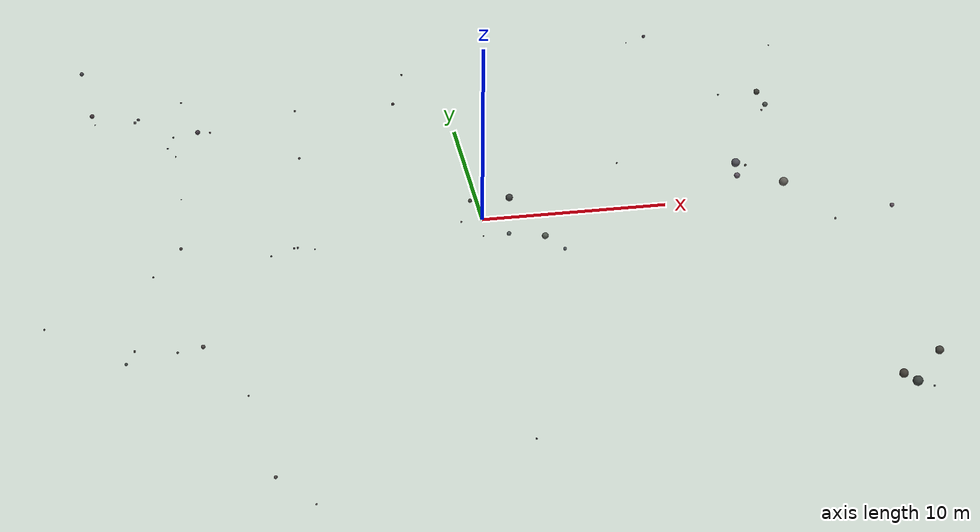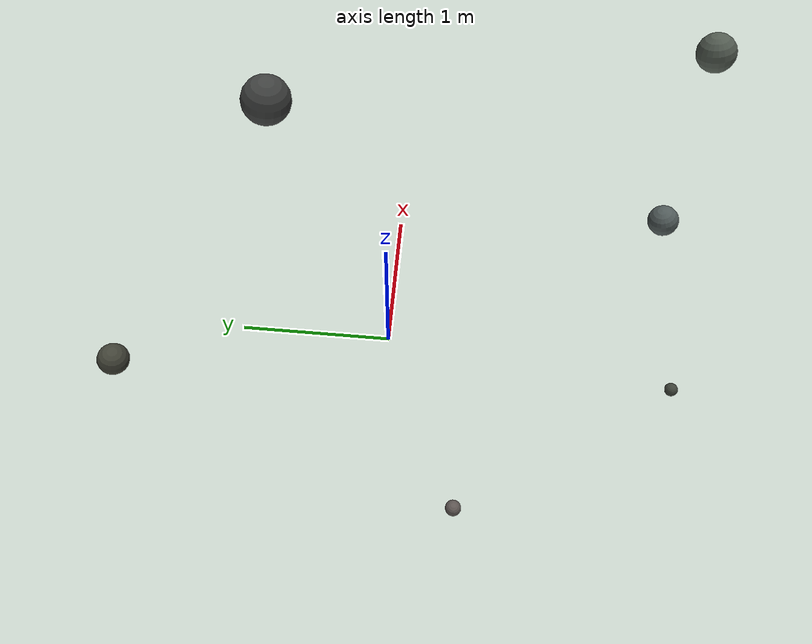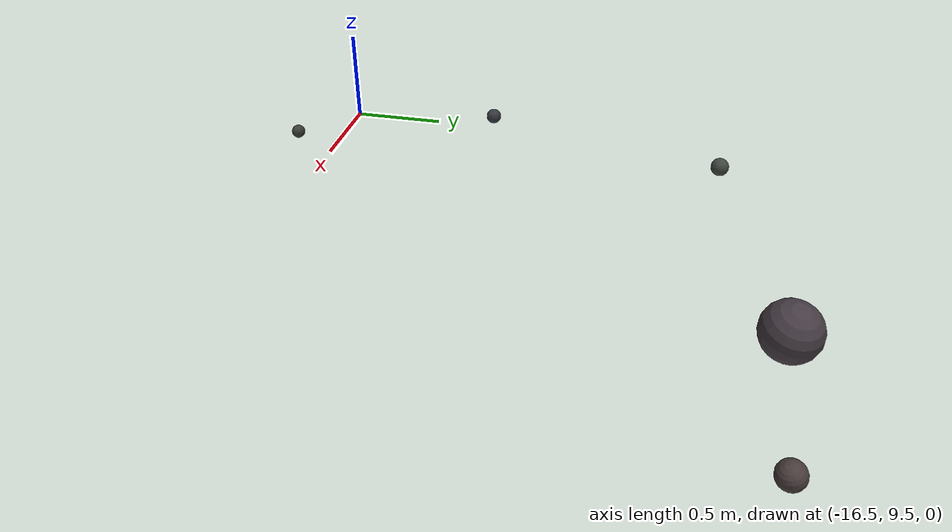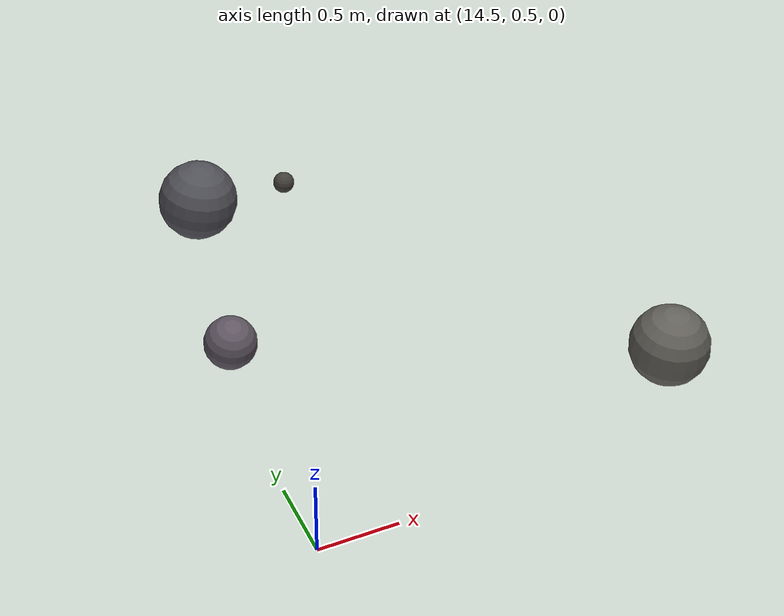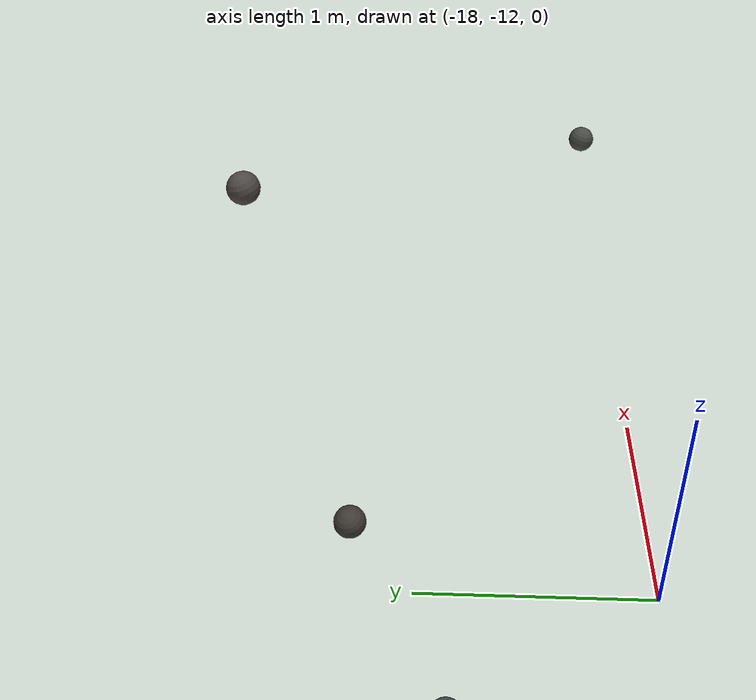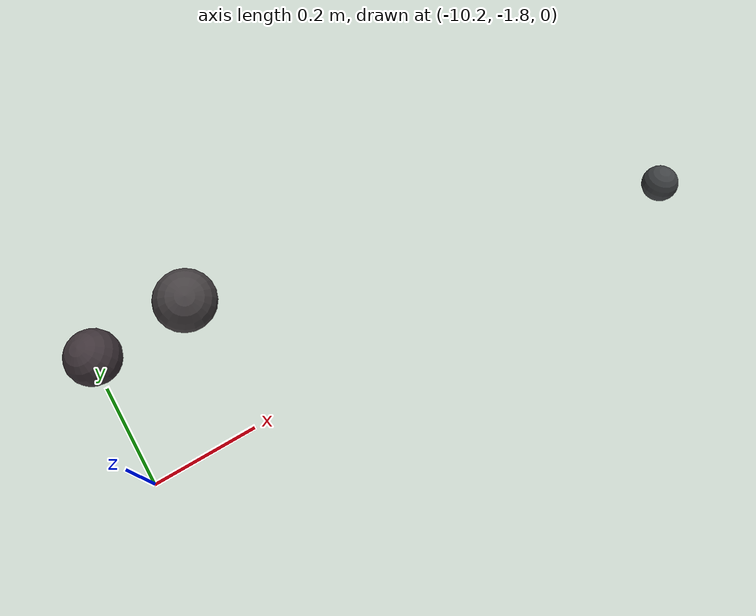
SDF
<sdf version="1.9">
 <world name="lunar_surface">
  <physics name="1ms" type="ignored">
   <max_step_size>0.001</max_step_size>
   <real_time_factor>1</real_time_factor>
   <real_time_update_rate>1000</real_time_update_rate>
  </physics>
  <plugin name="gz::sim::systems::Physics" filename="gz-sim-physics-system"/>
  <plugin name="gz::sim::systems::UserCommands" filename="gz-sim-user-commands-system"/>
  <plugin name="gz::sim::systems::SceneBroadcaster" filename="gz-sim-scene-broadcaster-system"/>
  <plugin name="gz::sim::systems::Contact" filename="gz-sim-contact-system"/>
  <gravity>0 0 -1.62</gravity>
  <magnetic_field>1e-09 1e-09 1e-09</magnetic_field>
  <scene>
   <ambient>0.25 0.25 0.25 1</ambient>
   <background>0.0 0.0 0.0 1</background>
   <shadows>true</shadows>
   <grid>false</grid>
   <origin_visual>false</origin_visual>
  </scene>
  <light name="sun" type="directional">
   <pose>0 0 100 0 0 0</pose>
   <intensity>1.2</intensity>
   <direction>-0.5 0.1 -0.86</direction>
   <diffuse>1.00 0.98 0.95 1</diffuse>
   <specular>0.30 0.28 0.25 1</specular>
   <attenuation>
    <range>100000</range>
    <linear>0.0</linear>
    <constant>1.0</constant>
    <quadratic>0.0</quadratic>
   </attenuation>
  </light>
  <light name="earthshine" type="directional">
   <pose>0 0 50 0 0 0</pose>
   <cast_shadows>false</cast_shadows>
   <intensity>0.10</intensity>
   <direction>0.3 -0.2 -0.9</direction>
   <diffuse>0.55 0.65 0.90 1</diffuse>
   <specular>0.0 0.0 0.0 1</specular>
   <attenuation>
    <range>100000</range>
    <linear>0.0</linear>
    <constant>1.0</constant>
    <quadratic>0.0</quadratic>
   </attenuation>
  </light>
  <light name="overhead_fill" type="directional">
   <pose>0 0 100 0 0 0</pose>
   <cast_shadows>false</cast_shadows>
   <intensity>0.25</intensity>
   <direction>0.0 0.0 -1.0</direction>
   <diffuse>0.70 0.68 0.65 1</diffuse>
   <specular>0.0 0.0 0.0 1</specular>
   <attenuation>
    <range>100000</range>
    <linear>0.0</linear>
    <constant>1.0</constant>
    <quadratic>0.0</quadratic>
   </attenuation>
  </light>
  <model name="rock_0">
   <static>true</static>
   <pose>-18.0887 14.1079 0.1225 -0.2373 -0.0024 2.3868</pose>
   <link name="link">
    <collision name="collision">
     <geometry><box><size>0.2719 0.3525 0.1511</size></box></geometry>
     <surface><friction><ode><mu>0.9</mu><mu2>0.9</mu2></ode></friction></surface>
    </collision>
    <visual name="visual">
     <geometry><sphere><radius>0.0831</radius></sphere></geometry>
     <material>
      <ambient>0.248 0.237 0.256 1</ambient>
      <diffuse>0.248 0.237 0.256 1</diffuse>
      <specular>0.05 0.05 0.05 1</specular>
     </material>
    </visual>
   </link>
  </model>
  <model name="rock_1">
   <static>true</static>
   <pose>-20.7686 14.8846 0.1567 0.1037 -0.0527 1.9237</pose>
   <link name="link">
    <collision name="collision">
     <geometry><box><size>0.3595 0.2448 0.2406</size></box></geometry>
     <surface><friction><ode><mu>0.9</mu><mu2>0.9</mu2></ode></friction></surface>
    </collision>
    <visual name="visual">
     <geometry><sphere><radius>0.1323</radius></sphere></geometry>
     <material>
      <ambient>0.261 0.216 0.229 1</ambient>
      <diffuse>0.261 0.216 0.229 1</diffuse>
      <specular>0.05 0.05 0.05 1</specular>
     </material>
    </visual>
   </link>
  </model>
  <model name="rock_2">
   <static>true</static>
   <pose>-20.5842 13.9283 0.0837 0.0238 0.1346 0.6395</pose>
   <link name="link">
    <collision name="collision">
     <geometry><box><size>0.1562 0.1298 0.0685</size></box></geometry>
     <surface><friction><ode><mu>0.9</mu><mu2>0.9</mu2></ode></friction></surface>
    </collision>
    <visual name="visual">
     <geometry><sphere><radius>0.0377</radius></sphere></geometry>
     <material>
      <ambient>0.326 0.352 0.359 1</ambient>
      <diffuse>0.326 0.352 0.359 1</diffuse>
      <specular>0.05 0.05 0.05 1</specular>
     </material>
    </visual>
   </link>
  </model>
  <model name="rock_3">
   <static>true</static>
   <pose>-18.2865 13.7511 0.1269 0.0444 -0.0155 1.4852</pose>
   <link name="link">
    <collision name="collision">
     <geometry><box><size>0.3489 0.2025 0.1526</size></box></geometry>
     <surface><friction><ode><mu>0.9</mu><mu2>0.9</mu2></ode></friction></surface>
    </collision>
    <visual name="visual">
     <geometry><sphere><radius>0.0839</radius></sphere></geometry>
     <material>
      <ambient>0.354 0.345 0.350 1</ambient>
      <diffuse>0.354 0.345 0.350 1</diffuse>
      <specular>0.05 0.05 0.05 1</specular>
     </material>
    </visual>
   </link>
  </model>
  <model name="rock_4">
   <static>true</static>
   <pose>18.6531 11.8959 0.2066 -0.0652 -0.1291 0.7454</pose>
   <link name="link">
    <collision name="collision">
     <geometry><box><size>0.5308 0.5130 0.3180</size></box></geometry>
     <surface><friction><ode><mu>0.9</mu><mu2>0.9</mu2></ode></friction></surface>
    </collision>
    <visual name="visual">
     <geometry><sphere><radius>0.1749</radius></sphere></geometry>
     <material>
      <ambient>0.246 0.249 0.220 1</ambient>
      <diffuse>0.246 0.249 0.220 1</diffuse>
      <specular>0.05 0.05 0.05 1</specular>
     </material>
    </visual>
   </link>
  </model>
  <model name="rock_5">
   <static>true</static>
   <pose>18.6925 10.2740 0.1805 -0.0535 -0.2425 1.9559</pose>
   <link name="link">
    <collision name="collision">
     <geometry><box><size>0.2754 0.2646 0.2675</size></box></geometry>
     <surface><friction><ode><mu>0.9</mu><mu2>0.9</mu2></ode></friction></surface>
    </collision>
    <visual name="visual">
     <geometry><sphere><radius>0.1455</radius></sphere></geometry>
     <material>
      <ambient>0.308 0.334 0.314 1</ambient>
      <diffuse>0.308 0.334 0.314 1</diffuse>
      <specular>0.05 0.05 0.05 1</specular>
     </material>
    </visual>
   </link>
  </model>
  <model name="rock_6">
   <static>true</static>
   <pose>16.3374 12.0711 0.1050 0.2836 0.2640 0.0471</pose>
   <link name="link">
    <collision name="collision">
     <geometry><box><size>0.1578 0.1417 0.1020</size></box></geometry>
     <surface><friction><ode><mu>0.9</mu><mu2>0.9</mu2></ode></friction></surface>
    </collision>
    <visual name="visual">
     <geometry><sphere><radius>0.0561</radius></sphere></geometry>
     <material>
      <ambient>0.298 0.346 0.310 1</ambient>
      <diffuse>0.298 0.346 0.310 1</diffuse>
      <specular>0.05 0.05 0.05 1</specular>
     </material>
    </visual>
   </link>
  </model>
  <model name="rock_7">
   <static>true</static>
   <pose>18.3333 9.7684 0.1055 0.2494 0.2934 1.9177</pose>
   <link name="link">
    <collision name="collision">
     <geometry><box><size>0.1615 0.1103 0.1030</size></box></geometry>
     <surface><friction><ode><mu>0.9</mu><mu2>0.9</mu2></ode></friction></surface>
    </collision>
    <visual name="visual">
     <geometry><sphere><radius>0.0566</radius></sphere></geometry>
     <material>
      <ambient>0.384 0.341 0.337 1</ambient>
      <diffuse>0.384 0.341 0.337 1</diffuse>
      <specular>0.05 0.05 0.05 1</specular>
     </material>
    </visual>
   </link>
  </model>
  <model name="rock_8">
   <static>true</static>
   <pose>17.0575 -17.2190 0.2239 0.1312 -0.0103 0.3695</pose>
   <link name="link">
    <collision name="collision">
     <geometry><box><size>0.4393 0.4329 0.3872</size></box></geometry>
     <surface><friction><ode><mu>0.9</mu><mu2>0.9</mu2></ode></friction></surface>
    </collision>
    <visual name="visual">
     <geometry><sphere><radius>0.2129</radius></sphere></geometry>
     <material>
      <ambient>0.257 0.238 0.209 1</ambient>
      <diffuse>0.257 0.238 0.209 1</diffuse>
      <specular>0.05 0.05 0.05 1</specular>
     </material>
    </visual>
   </link>
  </model>
  <model name="rock_9">
   <static>true</static>
   <pose>18.1969 -18.1977 0.0811 0.1315 -0.0437 2.2937</pose>
   <link name="link">
    <collision name="collision">
     <geometry><box><size>0.1355 0.1120 0.0873</size></box></geometry>
     <surface><friction><ode><mu>0.9</mu><mu2>0.9</mu2></ode></friction></surface>
    </collision>
    <visual name="visual">
     <geometry><sphere><radius>0.0480</radius></sphere></geometry>
     <material>
      <ambient>0.309 0.324 0.336 1</ambient>
      <diffuse>0.309 0.324 0.336 1</diffuse>
      <specular>0.05 0.05 0.05 1</specular>
     </material>
    </visual>
   </link>
  </model>
  <model name="rock_10">
   <static>true</static>
   <pose>17.4784 -17.9123 0.2448 0.2637 0.2194 2.8145</pose>
   <link name="link">
    <collision name="collision">
     <geometry><box><size>0.6170 0.4874 0.4337</size></box></geometry>
     <surface><friction><ode><mu>0.9</mu><mu2>0.9</mu2></ode></friction></surface>
    </collision>
    <visual name="visual">
     <geometry><sphere><radius>0.2385</radius></sphere></geometry>
     <material>
      <ambient>0.232 0.255 0.239 1</ambient>
      <diffuse>0.232 0.255 0.239 1</diffuse>
      <specular>0.05 0.05 0.05 1</specular>
     </material>
    </visual>
   </link>
  </model>
  <model name="rock_11">
   <static>true</static>
   <pose>19.4126 -15.6559 0.2107 -0.1027 -0.1493 1.8638</pose>
   <link name="link">
    <collision name="collision">
     <geometry><box><size>0.6414 0.4012 0.3657</size></box></geometry>
     <surface><friction><ode><mu>0.9</mu><mu2>0.9</mu2></ode></friction></surface>
    </collision>
    <visual name="visual">
     <geometry><sphere><radius>0.2011</radius></sphere></geometry>
     <material>
      <ambient>0.270 0.263 0.237 1</ambient>
      <diffuse>0.270 0.263 0.237 1</diffuse>
      <specular>0.05 0.05 0.05 1</specular>
     </material>
    </visual>
   </link>
  </model>
  <model name="rock_12">
   <static>true</static>
   <pose>-14.7135 11.9411 0.1539 0.0530 0.2528 0.8636</pose>
   <link name="link">
    <collision name="collision">
     <geometry><box><size>0.3553 0.3334 0.2427</size></box></geometry>
     <surface><friction><ode><mu>0.9</mu><mu2>0.9</mu2></ode></friction></surface>
    </collision>
    <visual name="visual">
     <geometry><sphere><radius>0.1335</radius></sphere></geometry>
     <material>
      <ambient>0.271 0.233 0.263 1</ambient>
      <diffuse>0.271 0.233 0.263 1</diffuse>
      <specular>0.05 0.05 0.05 1</specular>
     </material>
    </visual>
   </link>
  </model>
  <model name="rock_13">
   <static>true</static>
   <pose>-16.4627 10.3526 0.0894 0.0106 -0.1572 0.3309</pose>
   <link name="link">
    <collision name="collision">
     <geometry><box><size>0.1366 0.1694 0.0758</size></box></geometry>
     <surface><friction><ode><mu>0.9</mu><mu2>0.9</mu2></ode></friction></surface>
    </collision>
    <visual name="visual">
     <geometry><sphere><radius>0.0417</radius></sphere></geometry>
     <material>
      <ambient>0.201 0.213 0.237 1</ambient>
      <diffuse>0.201 0.213 0.237 1</diffuse>
      <specular>0.05 0.05 0.05 1</specular>
     </material>
    </visual>
   </link>
  </model>
  <model name="rock_14">
   <static>true</static>
   <pose>-14.0108 11.9088 0.1039 0.2352 0.1559 0.0373</pose>
   <link name="link">
    <collision name="collision">
     <geometry><box><size>0.1052 0.1195 0.1242</size></box></geometry>
     <surface><friction><ode><mu>0.9</mu><mu2>0.9</mu2></ode></friction></surface>
    </collision>
    <visual name="visual">
     <geometry><sphere><radius>0.0579</radius></sphere></geometry>
     <material>
      <ambient>0.280 0.230 0.231 1</ambient>
      <diffuse>0.280 0.230 0.231 1</diffuse>
      <specular>0.05 0.05 0.05 1</specular>
     </material>
    </visual>
   </link>
  </model>
  <model name="rock_15">
   <static>true</static>
   <pose>-16.1129 11.6620 0.0912 -0.0519 -0.1008 2.3021</pose>
   <link name="link">
    <collision name="collision">
     <geometry><box><size>0.1136 0.0931 0.0872</size></box></geometry>
     <surface><friction><ode><mu>0.9</mu><mu2>0.9</mu2></ode></friction></surface>
    </collision>
    <visual name="visual">
     <geometry><sphere><radius>0.0479</radius></sphere></geometry>
     <material>
      <ambient>0.241 0.271 0.248 1</ambient>
      <diffuse>0.241 0.271 0.248 1</diffuse>
      <specular>0.05 0.05 0.05 1</specular>
     </material>
    </visual>
   </link>
  </model>
  <model name="rock_16">
   <static>true</static>
   <pose>15.4504 3.3360 0.1471 0.0226 0.2199 0.8297</pose>
   <link name="link">
    <collision name="collision">
     <geometry><box><size>0.1194 0.1460 0.1189</size></box></geometry>
     <surface><friction><ode><mu>0.9</mu><mu2>0.9</mu2></ode></friction></surface>
    </collision>
    <visual name="visual">
     <geometry><sphere><radius>0.0654</radius></sphere></geometry>
     <material>
      <ambient>0.261 0.248 0.228 1</ambient>
      <diffuse>0.261 0.248 0.228 1</diffuse>
      <specular>0.05 0.05 0.05 1</specular>
     </material>
    </visual>
   </link>
  </model>
  <model name="rock_17">
   <static>true</static>
   <pose>16.8650 0.8316 0.3828 0.0186 -0.1421 2.7477</pose>
   <link name="link">
    <collision name="collision">
     <geometry><box><size>0.5966 0.4729 0.4414</size></box></geometry>
     <surface><friction><ode><mu>0.9</mu><mu2>0.9</mu2></ode></friction></surface>
    </collision>
    <visual name="visual">
     <geometry><sphere><radius>0.2428</radius></sphere></geometry>
     <material>
      <ambient>0.385 0.376 0.349 1</ambient>
      <diffuse>0.385 0.376 0.349 1</diffuse>
      <specular>0.05 0.05 0.05 1</specular>
     </material>
    </visual>
   </link>
  </model>
  <model name="rock_18">
   <static>true</static>
   <pose>14.7230 2.8754 0.6260 0.1476 -0.1131 2.3973</pose>
   <link name="link">
    <collision name="collision">
     <geometry><box><size>0.6358 0.4956 0.4316</size></box></geometry>
     <surface><friction><ode><mu>0.9</mu><mu2>0.9</mu2></ode></friction></surface>
    </collision>
    <visual name="visual">
     <geometry><sphere><radius>0.2374</radius></sphere></geometry>
     <material>
      <ambient>0.314 0.314 0.343 1</ambient>
      <diffuse>0.314 0.314 0.343 1</diffuse>
      <specular>0.05 0.05 0.05 1</specular>
     </material>
    </visual>
   </link>
  </model>
  <model name="rock_19">
   <static>true</static>
   <pose>14.5387 1.8951 0.3694 0.0337 -0.2104 1.7241</pose>
   <link name="link">
    <collision name="collision">
     <geometry><box><size>0.5893 0.5622 0.2902</size></box></geometry>
     <surface><friction><ode><mu>0.9</mu><mu2>0.9</mu2></ode></friction></surface>
    </collision>
    <visual name="visual">
     <geometry><sphere><radius>0.1596</radius></sphere></geometry>
     <material>
      <ambient>0.372 0.336 0.381 1</ambient>
      <diffuse>0.372 0.336 0.381 1</diffuse>
      <specular>0.05 0.05 0.05 1</specular>
     </material>
    </visual>
   </link>
  </model>
  <model name="rock_20">
   <static>true</static>
   <pose>-18.7813 -11.1264 0.3557 -0.0578 -0.0238 2.9295</pose>
   <link name="link">
    <collision name="collision">
     <geometry><box><size>0.1395 0.1487 0.1180</size></box></geometry>
     <surface><friction><ode><mu>0.9</mu><mu2>0.9</mu2></ode></friction></surface>
    </collision>
    <visual name="visual">
     <geometry><sphere><radius>0.0649</radius></sphere></geometry>
     <material>
      <ambient>0.269 0.303 0.284 1</ambient>
      <diffuse>0.269 0.303 0.284 1</diffuse>
      <specular>0.05 0.05 0.05 1</specular>
     </material>
    </visual>
   </link>
  </model>
  <model name="rock_21">
   <static>true</static>
   <pose>-16.3374 -11.7304 1.1842 -0.1103 -0.2282 1.9571</pose>
   <link name="link">
    <collision name="collision">
     <geometry><box><size>0.0995 0.1376 0.1173</size></box></geometry>
     <surface><friction><ode><mu>0.9</mu><mu2>0.9</mu2></ode></friction></surface>
    </collision>
    <visual name="visual">
     <geometry><sphere><radius>0.0547</radius></sphere></geometry>
     <material>
      <ambient>0.281 0.291 0.267 1</ambient>
      <diffuse>0.281 0.291 0.267 1</diffuse>
      <specular>0.05 0.05 0.05 1</specular>
     </material>
    </visual>
   </link>
  </model>
  <model name="rock_22">
   <static>true</static>
   <pose>-15.1717 -9.9278 0.1517 -0.2754 0.0814 0.1975</pose>
   <link name="link">
    <collision name="collision">
     <geometry><box><size>0.3083 0.1867 0.2299</size></box></geometry>
     <surface><friction><ode><mu>0.9</mu><mu2>0.9</mu2></ode></friction></surface>
    </collision>
    <visual name="visual">
     <geometry><sphere><radius>0.1027</radius></sphere></geometry>
     <material>
      <ambient>0.298 0.279 0.268 1</ambient>
      <diffuse>0.298 0.279 0.268 1</diffuse>
      <specular>0.05 0.05 0.05 1</specular>
     </material>
    </visual>
   </link>
  </model>
  <model name="rock_23">
   <static>true</static>
   <pose>-18.3473 -10.7881 0.8175 -0.2910 0.1375 1.3105</pose>
   <link name="link">
    <collision name="collision">
     <geometry><box><size>0.1688 0.1247 0.1033</size></box></geometry>
     <surface><friction><ode><mu>0.9</mu><mu2>0.9</mu2></ode></friction></surface>
    </collision>
    <visual name="visual">
     <geometry><sphere><radius>0.0568</radius></sphere></geometry>
     <material>
      <ambient>0.242 0.227 0.202 1</ambient>
      <diffuse>0.242 0.227 0.202 1</diffuse>
      <specular>0.05 0.05 0.05 1</specular>
     </material>
    </visual>
   </link>
  </model>
  <model name="rock_24">
   <static>true</static>
   <pose>-9.1205 -1.7990 0.0840 0.2414 0.0969 1.9667</pose>
   <link name="link">
    <collision name="collision">
     <geometry><box><size>0.1747 0.1451 0.0616</size></box></geometry>
     <surface><friction><ode><mu>0.9</mu><mu2>0.9</mu2></ode></friction></surface>
    </collision>
    <visual name="visual">
     <geometry><sphere><radius>0.0339</radius></sphere></geometry>
     <material>
      <ambient>0.249 0.259 0.268 1</ambient>
      <diffuse>0.249 0.259 0.268 1</diffuse>
      <specular>0.05 0.05 0.05 1</specular>
     </material>
    </visual>
   </link>
  </model>
  <model name="rock_25">
   <static>true</static>
   <pose>-10.1836 -1.5703 0.1017 -0.1657 0.2481 1.7626</pose>
   <link name="link">
    <collision name="collision">
     <geometry><box><size>0.1540 0.1111 0.0936</size></box></geometry>
     <surface><friction><ode><mu>0.9</mu><mu2>0.9</mu2></ode></friction></surface>
    </collision>
    <visual name="visual">
     <geometry><sphere><radius>0.0515</radius></sphere></geometry>
     <material>
      <ambient>0.248 0.207 0.227 1</ambient>
      <diffuse>0.248 0.207 0.227 1</diffuse>
      <specular>0.05 0.05 0.05 1</specular>
     </material>
    </visual>
   </link>
  </model>
  <model name="rock_26">
   <static>true</static>
   <pose>-9.9980 -1.5605 0.1075 0.1810 -0.1858 1.0961</pose>
   <link name="link">
    <collision name="collision">
     <geometry><box><size>0.1202 0.1446 0.1064</size></box></geometry>
     <surface><friction><ode><mu>0.9</mu><mu2>0.9</mu2></ode></friction></surface>
    </collision>
    <visual name="visual">
     <geometry><sphere><radius>0.0585</radius></sphere></geometry>
     <material>
      <ambient>0.277 0.257 0.264 1</ambient>
      <diffuse>0.277 0.257 0.264 1</diffuse>
      <specular>0.05 0.05 0.05 1</specular>
     </material>
    </visual>
   </link>
  </model>
  <model name="rock_27">
   <static>true</static>
   <pose>-11.4059 -2.1746 0.0990 0.2450 -0.2904 2.7226</pose>
   <link name="link">
    <collision name="collision">
     <geometry><box><size>0.0860 0.1739 0.0844</size></box></geometry>
     <surface><friction><ode><mu>0.9</mu><mu2>0.9</mu2></ode></friction></surface>
    </collision>
    <visual name="visual">
     <geometry><sphere><radius>0.0464</radius></sphere></geometry>
     <material>
      <ambient>0.240 0.264 0.244 1</ambient>
      <diffuse>0.240 0.264 0.244 1</diffuse>
      <specular>0.05 0.05 0.05 1</specular>
     </material>
    </visual>
   </link>
  </model>
  <model name="rock_28">
   <static>true</static>
   <pose>1.6209 1.0646 0.5880 -0.1033 -0.1168 2.0468</pose>
   <link name="link">
    <collision name="collision">
     <geometry><box><size>0.5028 0.4923 0.3511</size></box></geometry>
     <surface><friction><ode><mu>0.9</mu><mu2>0.9</mu2></ode></friction></surface>
    </collision>
    <visual name="visual">
     <geometry><sphere><radius>0.1931</radius></sphere></geometry>
     <material>
      <ambient>0.246 0.253 0.247 1</ambient>
      <diffuse>0.246 0.253 0.247 1</diffuse>
      <specular>0.05 0.05 0.05 1</specular>
     </material>
    </visual>
   </link>
  </model>
  <model name="rock_29">
   <static>true</static>
   <pose>1.0826 -1.9109 0.1592 -0.2281 0.1328 0.4298</pose>
   <link name="link">
    <collision name="collision">
     <geometry><box><size>0.3673 0.2596 0.2024</size></box></geometry>
     <surface><friction><ode><mu>0.9</mu><mu2>0.9</mu2></ode></friction></surface>
    </collision>
    <visual name="visual">
     <geometry><sphere><radius>0.1113</radius></sphere></geometry>
     <material>
      <ambient>0.315 0.356 0.352 1</ambient>
      <diffuse>0.315 0.356 0.352 1</diffuse>
      <specular>0.05 0.05 0.05 1</specular>
     </material>
    </visual>
   </link>
  </model>
  <model name="rock_30">
   <static>true</static>
   <pose>-1.2356 -0.5012 0.2465 -0.0557 0.0284 2.4094</pose>
   <link name="link">
    <collision name="collision">
     <geometry><box><size>0.1403 0.0841 0.1176</size></box></geometry>
     <surface><friction><ode><mu>0.9</mu><mu2>0.9</mu2></ode></friction></surface>
    </collision>
    <visual name="visual">
     <geometry><sphere><radius>0.0463</radius></sphere></geometry>
     <material>
      <ambient>0.367 0.336 0.323 1</ambient>
      <diffuse>0.367 0.336 0.323 1</diffuse>
      <specular>0.05 0.05 0.05 1</specular>
     </material>
    </visual>
   </link>
  </model>
  <model name="rock_31">
   <static>true</static>
   <pose>-0.2708 -1.8661 0.0962 0.0984 0.0304 1.5622</pose>
   <link name="link">
    <collision name="collision">
     <geometry><box><size>0.1512 0.1125 0.0769</size></box></geometry>
     <surface><friction><ode><mu>0.9</mu><mu2>0.9</mu2></ode></friction></surface>
    </collision>
    <visual name="visual">
     <geometry><sphere><radius>0.0423</radius></sphere></geometry>
     <material>
      <ambient>0.240 0.258 0.220 1</ambient>
      <diffuse>0.240 0.258 0.220 1</diffuse>
      <specular>0.05 0.05 0.05 1</specular>
     </material>
    </visual>
   </link>
  </model>
  <model name="rock_32">
   <static>true</static>
   <pose>-17.4453 -3.2790 0.1123 0.1150 -0.2215 1.6552</pose>
   <link name="link">
    <collision name="collision">
     <geometry><box><size>0.2350 0.0809 0.1520</size></box></geometry>
     <surface><friction><ode><mu>0.9</mu><mu2>0.9</mu2></ode></friction></surface>
    </collision>
    <visual name="visual">
     <geometry><sphere><radius>0.0445</radius></sphere></geometry>
     <material>
      <ambient>0.278 0.258 0.248 1</ambient>
      <diffuse>0.278 0.258 0.248 1</diffuse>
      <specular>0.05 0.05 0.05 1</specular>
     </material>
    </visual>
   </link>
  </model>
  <model name="rock_33">
   <static>true</static>
   <pose>-12.4686 -21.6201 1.1954 -0.0084 -0.1065 1.9869</pose>
   <link name="link">
    <collision name="collision">
     <geometry><box><size>0.2102 0.2174 0.1406</size></box></geometry>
     <surface><friction><ode><mu>0.9</mu><mu2>0.9</mu2></ode></friction></surface>
    </collision>
    <visual name="visual">
     <geometry><sphere><radius>0.0774</radius></sphere></geometry>
     <material>
      <ambient>0.307 0.287 0.277 1</ambient>
      <diffuse>0.307 0.287 0.277 1</diffuse>
      <specular>0.05 0.05 0.05 1</specular>
     </material>
    </visual>
   </link>
  </model>
  <model name="rock_34">
   <static>true</static>
   <pose>-2.1557 17.3225 0.2661 -0.0952 -0.0095 0.6697</pose>
   <link name="link">
    <collision name="collision">
     <geometry><box><size>0.1785 0.1123 0.1067</size></box></geometry>
     <surface><friction><ode><mu>0.9</mu><mu2>0.9</mu2></ode></friction></surface>
    </collision>
    <visual name="visual">
     <geometry><sphere><radius>0.0587</radius></sphere></geometry>
     <material>
      <ambient>0.230 0.210 0.200 1</ambient>
      <diffuse>0.230 0.210 0.200 1</diffuse>
      <specular>0.05 0.05 0.05 1</specular>
     </material>
    </visual>
   </link>
  </model>
  <model name="rock_35">
   <static>true</static>
   <pose>-9.1542 8.0464 0.1022 0.2475 0.1734 2.9336</pose>
   <link name="link">
    <collision name="collision">
     <geometry><box><size>0.1153 0.2131 0.1181</size></box></geometry>
     <surface><friction><ode><mu>0.9</mu><mu2>0.9</mu2></ode></friction></surface>
    </collision>
    <visual name="visual">
     <geometry><sphere><radius>0.0634</radius></sphere></geometry>
     <material>
      <ambient>0.313 0.293 0.283 1</ambient>
      <diffuse>0.313 0.293 0.283 1</diffuse>
      <specular>0.05 0.05 0.05 1</specular>
     </material>
    </visual>
   </link>
  </model>
  <model name="rock_36">
   <static>true</static>
   <pose>18.5762 -2.9453 0.1032 -0.1154 -0.0883 1.5846</pose>
   <link name="link">
    <collision name="collision">
     <geometry><box><size>0.1148 0.1583 0.1100</size></box></geometry>
     <surface><friction><ode><mu>0.9</mu><mu2>0.9</mu2></ode></friction></surface>
    </collision>
    <visual name="visual">
     <geometry><sphere><radius>0.0605</radius></sphere></geometry>
     <material>
      <ambient>0.328 0.308 0.298 1</ambient>
      <diffuse>0.328 0.308 0.298 1</diffuse>
      <specular>0.05 0.05 0.05 1</specular>
     </material>
    </visual>
   </link>
  </model>
  <model name="rock_37">
   <static>true</static>
   <pose>-15.9841 -1.1201 0.3380 0.1084 -0.2264 0.2854</pose>
   <link name="link">
    <collision name="collision">
     <geometry><box><size>0.2403 0.1393 0.1759</size></box></geometry>
     <surface><friction><ode><mu>0.9</mu><mu2>0.9</mu2></ode></friction></surface>
    </collision>
    <visual name="visual">
     <geometry><sphere><radius>0.0766</radius></sphere></geometry>
     <material>
      <ambient>0.270 0.250 0.240 1</ambient>
      <diffuse>0.270 0.250 0.240 1</diffuse>
      <specular>0.05 0.05 0.05 1</specular>
     </material>
    </visual>
   </link>
  </model>
  <model name="rock_38">
   <static>true</static>
   <pose>-15.5644 15.5457 0.2996 0.2306 -0.0012 2.7407</pose>
   <link name="link">
    <collision name="collision">
     <geometry><box><size>0.1066 0.0923 0.0799</size></box></geometry>
     <surface><friction><ode><mu>0.9</mu><mu2>0.9</mu2></ode></friction></surface>
    </collision>
    <visual name="visual">
     <geometry><sphere><radius>0.0440</radius></sphere></geometry>
     <material>
      <ambient>0.268 0.248 0.238 1</ambient>
      <diffuse>0.268 0.248 0.238 1</diffuse>
      <specular>0.05 0.05 0.05 1</specular>
     </material>
    </visual>
   </link>
  </model>
  <model name="rock_39">
   <static>true</static>
   <pose>-22.7150 -7.1803 0.0720 0.1798 -0.0668 0.1825</pose>
   <link name="link">
    <collision name="collision">
     <geometry><box><size>0.2035 0.1779 0.0856</size></box></geometry>
     <surface><friction><ode><mu>0.9</mu><mu2>0.9</mu2></ode></friction></surface>
    </collision>
    <visual name="visual">
     <geometry><sphere><radius>0.0471</radius></sphere></geometry>
     <material>
      <ambient>0.251 0.231 0.221 1</ambient>
      <diffuse>0.251 0.231 0.221 1</diffuse>
      <specular>0.05 0.05 0.05 1</specular>
     </material>
    </visual>
   </link>
  </model>
  <model name="rock_40">
   <static>true</static>
   <pose>-8.9805 13.2505 0.4119 0.1788 -0.2463 2.2169</pose>
   <link name="link">
    <collision name="collision">
     <geometry><box><size>0.1126 0.1522 0.1795</size></box></geometry>
     <surface><friction><ode><mu>0.9</mu><mu2>0.9</mu2></ode></friction></surface>
    </collision>
    <visual name="visual">
     <geometry><sphere><radius>0.0620</radius></sphere></geometry>
     <material>
      <ambient>0.289 0.269 0.259 1</ambient>
      <diffuse>0.289 0.269 0.259 1</diffuse>
      <specular>0.05 0.05 0.05 1</specular>
     </material>
    </visual>
   </link>
  </model>
  <model name="rock_41">
   <static>true</static>
   <pose>8.2443 4.1061 0.4722 -0.1385 0.2494 2.4572</pose>
   <link name="link">
    <collision name="collision">
     <geometry><box><size>0.0890 0.1366 0.1364</size></box></geometry>
     <surface><friction><ode><mu>0.9</mu><mu2>0.9</mu2></ode></friction></surface>
    </collision>
    <visual name="visual">
     <geometry><sphere><radius>0.0489</radius></sphere></geometry>
     <material>
      <ambient>0.327 0.307 0.297 1</ambient>
      <diffuse>0.327 0.307 0.297 1</diffuse>
      <specular>0.05 0.05 0.05 1</specular>
     </material>
    </visual>
   </link>
  </model>
  <model name="rock_42">
   <static>true</static>
   <pose>-10.8585 -22.6339 0.3449 0.1806 -0.1786 1.5720</pose>
   <link name="link">
    <collision name="collision">
     <geometry><box><size>0.1269 0.1063 0.0723</size></box></geometry>
     <surface><friction><ode><mu>0.9</mu><mu2>0.9</mu2></ode></friction></surface>
    </collision>
    <visual name="visual">
     <geometry><sphere><radius>0.0397</radius></sphere></geometry>
     <material>
      <ambient>0.331 0.311 0.301 1</ambient>
      <diffuse>0.331 0.311 0.301 1</diffuse>
      <specular>0.05 0.05 0.05 1</specular>
     </material>
    </visual>
   </link>
  </model>
  <model name="rock_43">
   <static>true</static>
   <pose>-13.2552 -14.2814 0.2133 0.0823 0.0595 2.3978</pose>
   <link name="link">
    <collision name="collision">
     <geometry><box><size>0.1475 0.1099 0.0714</size></box></geometry>
     <surface><friction><ode><mu>0.9</mu><mu2>0.9</mu2></ode></friction></surface>
    </collision>
    <visual name="visual">
     <geometry><sphere><radius>0.0393</radius></sphere></geometry>
     <material>
      <ambient>0.330 0.310 0.300 1</ambient>
      <diffuse>0.330 0.310 0.300 1</diffuse>
      <specular>0.05 0.05 0.05 1</specular>
     </material>
    </visual>
   </link>
  </model>
  <model name="rock_44">
   <static>true</static>
   <pose>-3.1693 13.4384 0.3141 0.0055 -0.0569 1.5073</pose>
   <link name="link">
    <collision name="collision">
     <geometry><box><size>0.2394 0.1657 0.2139</size></box></geometry>
     <surface><friction><ode><mu>0.9</mu><mu2>0.9</mu2></ode></friction></surface>
    </collision>
    <visual name="visual">
     <geometry><sphere><radius>0.0912</radius></sphere></geometry>
     <material>
      <ambient>0.217 0.179 0.184 1</ambient>
      <diffuse>0.217 0.179 0.184 1</diffuse>
      <specular>0.05 0.05 0.05 1</specular>
     </material>
    </visual>
   </link>
  </model>
  <model name="rock_45">
   <static>true</static>
   <pose>-0.4063 1.7616 0.1681 0.0061 -0.2069 1.4096</pose>
   <link name="link">
    <collision name="collision">
     <geometry><box><size>0.1895 0.2760 0.2186</size></box></geometry>
     <surface><friction><ode><mu>0.9</mu><mu2>0.9</mu2></ode></friction></surface>
    </collision>
    <visual name="visual">
     <geometry><sphere><radius>0.1042</radius></sphere></geometry>
     <material>
      <ambient>0.255 0.260 0.215 1</ambient>
      <diffuse>0.255 0.260 0.215 1</diffuse>
      <specular>0.05 0.05 0.05 1</specular>
     </material>
    </visual>
   </link>
  </model>
  <model name="rock_46">
   <static>true</static>
   <pose>22.0275 -2.1250 0.1364 0.1761 -0.0954 2.2750</pose>
   <link name="link">
    <collision name="collision">
     <geometry><box><size>0.2070 0.2608 0.2095</size></box></geometry>
     <surface><friction><ode><mu>0.9</mu><mu2>0.9</mu2></ode></friction></surface>
    </collision>
    <visual name="visual">
     <geometry><sphere><radius>0.1138</radius></sphere></geometry>
     <material>
      <ambient>0.376 0.324 0.365 1</ambient>
      <diffuse>0.376 0.324 0.365 1</diffuse>
      <specular>0.05 0.05 0.05 1</specular>
     </material>
    </visual>
   </link>
  </model>
  <model name="rock_47">
   <static>true</static>
   <pose>-21.4740 20.6344 0.1528 -0.2420 0.1187 1.8866</pose>
   <link name="link">
    <collision name="collision">
     <geometry><box><size>0.2556 0.3155 0.2159</size></box></geometry>
     <surface><friction><ode><mu>0.9</mu><mu2>0.9</mu2></ode></friction></surface>
    </collision>
    <visual name="visual">
     <geometry><sphere><radius>0.1188</radius></sphere></geometry>
     <material>
      <ambient>0.276 0.272 0.292 1</ambient>
      <diffuse>0.276 0.272 0.292 1</diffuse>
      <specular>0.05 0.05 0.05 1</specular>
     </material>
    </visual>
   </link>
  </model>
  <model name="rock_48">
   <static>true</static>
   <pose>2.9071 -2.4941 0.2015 0.2493 0.0016 2.4839</pose>
   <link name="link">
    <collision name="collision">
     <geometry><box><size>0.4626 0.4873 0.3071</size></box></geometry>
     <surface><friction><ode><mu>0.9</mu><mu2>0.9</mu2></ode></friction></surface>
    </collision>
    <visual name="visual">
     <geometry><sphere><radius>0.1689</radius></sphere></geometry>
     <material>
      <ambient>0.320 0.356 0.316 1</ambient>
      <diffuse>0.320 0.356 0.316 1</diffuse>
      <specular>0.05 0.05 0.05 1</specular>
     </material>
    </visual>
   </link>
  </model>
  <model name="rock_49">
   <static>true</static>
   <pose>-15.8459 4.4675 0.0719 0.0156 0.1211 2.4736</pose>
   <link name="link">
    <collision name="collision">
     <geometry><box><size>0.0956 0.1014 0.0548</size></box></geometry>
     <surface><friction><ode><mu>0.9</mu><mu2>0.9</mu2></ode></friction></surface>
    </collision>
    <visual name="visual">
     <geometry><sphere><radius>0.0302</radius></sphere></geometry>
     <material>
      <ambient>0.267 0.273 0.228 1</ambient>
      <diffuse>0.267 0.273 0.228 1</diffuse>
      <specular>0.05 0.05 0.05 1</specular>
     </material>
    </visual>
   </link>
  </model>
  <model name="rock_50">
   <static>true</static>
   <pose>13.8228 20.6607 0.1464 -0.0725 -0.2491 0.9261</pose>
   <link name="link">
    <collision name="collision">
     <geometry><box><size>0.2351 0.2385 0.1901</size></box></geometry>
     <surface><friction><ode><mu>0.9</mu><mu2>0.9</mu2></ode></friction></surface>
    </collision>
    <visual name="visual">
     <geometry><sphere><radius>0.1045</radius></sphere></geometry>
     <material>
      <ambient>0.262 0.236 0.269 1</ambient>
      <diffuse>0.262 0.236 0.269 1</diffuse>
      <specular>0.05 0.05 0.05 1</specular>
     </material>
    </visual>
   </link>
  </model>
  <model name="rock_51">
   <static>true</static>
   <pose>-16.0334 9.3050 0.0947 0.0371 -0.0340 0.2379</pose>
   <link name="link">
    <collision name="collision">
     <geometry><box><size>0.0667 0.1283 0.0970</size></box></geometry>
     <surface><friction><ode><mu>0.9</mu><mu2>0.9</mu2></ode></friction></surface>
    </collision>
    <visual name="visual">
     <geometry><sphere><radius>0.0367</radius></sphere></geometry>
     <material>
      <ambient>0.213 0.234 0.199 1</ambient>
      <diffuse>0.213 0.234 0.199 1</diffuse>
      <specular>0.05 0.05 0.05 1</specular>
     </material>
    </visual>
   </link>
  </model>
  <model name="rock_52">
   <static>true</static>
   <pose>21.3656 18.3120 0.0837 0.0197 0.2847 2.9335</pose>
   <link name="link">
    <collision name="collision">
     <geometry><box><size>0.0691 0.0611 0.0764</size></box></geometry>
     <surface><friction><ode><mu>0.9</mu><mu2>0.9</mu2></ode></friction></surface>
    </collision>
    <visual name="visual">
     <geometry><sphere><radius>0.0336</radius></sphere></geometry>
     <material>
      <ambient>0.269 0.267 0.241 1</ambient>
      <diffuse>0.269 0.267 0.241 1</diffuse>
      <specular>0.05 0.05 0.05 1</specular>
     </material>
    </visual>
   </link>
  </model>
  <model name="rock_53">
   <static>true</static>
   <pose>12.5272 20.0050 0.0957 0.0110 0.0945 0.9076</pose>
   <link name="link">
    <collision name="collision">
     <geometry><box><size>0.0625 0.0944 0.0732</size></box></geometry>
     <surface><friction><ode><mu>0.9</mu><mu2>0.9</mu2></ode></friction></surface>
    </collision>
    <visual name="visual">
     <geometry><sphere><radius>0.0344</radius></sphere></geometry>
     <material>
      <ambient>0.337 0.293 0.325 1</ambient>
      <diffuse>0.337 0.293 0.325 1</diffuse>
      <specular>0.05 0.05 0.05 1</specular>
     </material>
    </visual>
   </link>
  </model>
  <model name="rock_54">
   <static>true</static>
   <pose>-0.7832 -19.3315 0.1057 0.1028 -0.0191 0.8613</pose>
   <link name="link">
    <collision name="collision">
     <geometry><box><size>0.0889 0.0749 0.0835</size></box></geometry>
     <surface><friction><ode><mu>0.9</mu><mu2>0.9</mu2></ode></friction></surface>
    </collision>
    <visual name="visual">
     <geometry><sphere><radius>0.0412</radius></sphere></geometry>
     <material>
      <ambient>0.277 0.273 0.282 1</ambient>
      <diffuse>0.277 0.273 0.282 1</diffuse>
      <specular>0.05 0.05 0.05 1</specular>
     </material>
    </visual>
   </link>
  </model>
  <model name="rock_55">
   <static>true</static>
   <pose>3.6998 -3.8084 0.1284 0.1284 -0.1065 3.1348</pose>
   <link name="link">
    <collision name="collision">
     <geometry><box><size>0.2550 0.1881 0.1597</size></box></geometry>
     <surface><friction><ode><mu>0.9</mu><mu2>0.9</mu2></ode></friction></surface>
    </collision>
    <visual name="visual">
     <geometry><sphere><radius>0.0878</radius></sphere></geometry>
     <material>
      <ambient>0.326 0.364 0.378 1</ambient>
      <diffuse>0.326 0.364 0.378 1</diffuse>
      <specular>0.05 0.05 0.05 1</specular>
     </material>
    </visual>
   </link>
  </model>
 </world>
</sdf>
